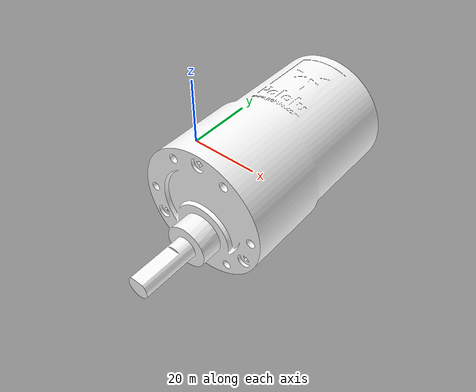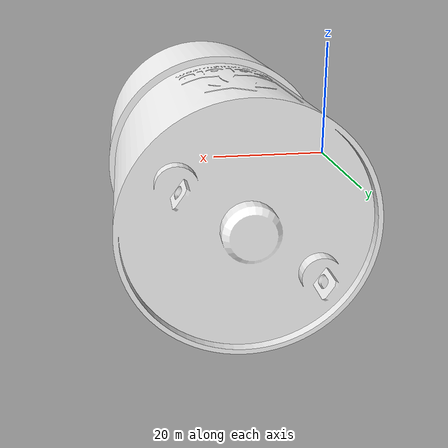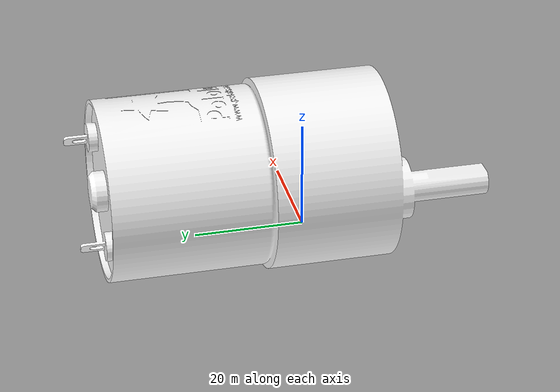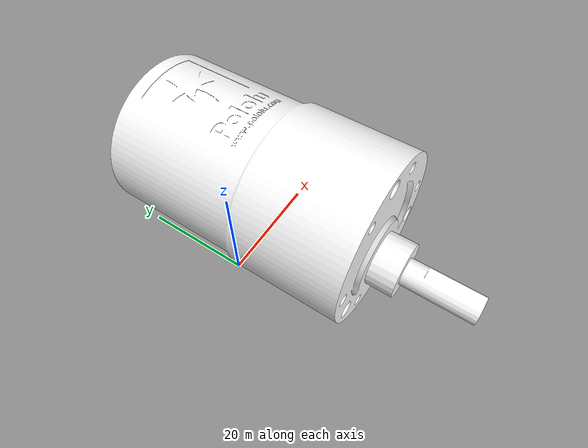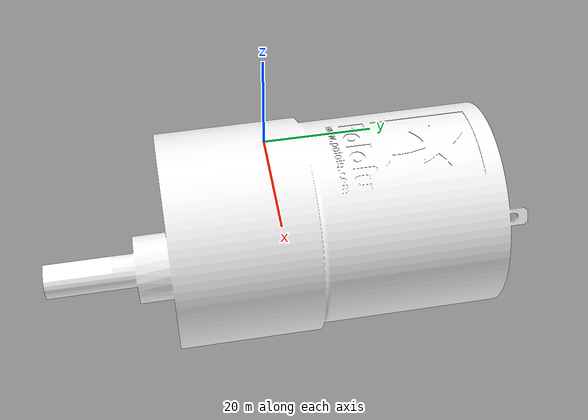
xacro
<robot xmlns:xacro="http://www.ros.org/wiki/xacro" name="assy_part_04">
  <xacro:include filename="$(find o2as_parts_description)/urdf/generated/04_37D-GEARMOTOR-50-70_macro.urdf.xacro"/>
  <xacro:assy_part_04 prefix="" parent="world" spawn_attached="false">
    <origin rpy="0 0 0" xyz="0 0 0"/>
  </xacro:assy_part_04>
</robot>

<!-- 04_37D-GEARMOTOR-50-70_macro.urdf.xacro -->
<robot xmlns:xacro="http://www.ros.org/wiki/xacro" name="assy_part_04">
  <xacro:macro name="assy_part_04" params="prefix parent spawn_attached *origin">
    <link name="${prefix}assy_part_04">
      <visual>
        <origin rpy="1.5707 0 0" xyz="0 0 0"/>
        <geometry>
          <mesh filename="package://o2as_parts_description/meshes/04_37D-GEARMOTOR-50-70.stl" scale="0.001 0.001 0.001"/>
        </geometry>
        <material name="white">
          <color rgba="1 1 1 1"/>
        </material>
      </visual>
      <collision>
        <origin rpy="1.5707 0 0" xyz="0 0 0"/>
        <geometry>
          <mesh filename="package://o2as_parts_description/meshes/04_37D-GEARMOTOR-50-70.stl" scale="0.001 0.001 0.001"/>
        </geometry>
      </collision>
    </link>

    <xacro:if value="${spawn_attached}">
      <joint name="${prefix}assy_part_04_joint" type="fixed">
        <parent link="${parent}"/>
        <child link="${prefix}assy_part_04"/>
        <xacro:insert_block name="origin"/>
      </joint>
    </xacro:if>

  <!-- Extra frames for assembly and motion planning, if any -->
    <joint name="${prefix}assy_part_04_tip_joint" type="fixed">
      <parent link="${prefix}assy_part_04"/>
      <child link="${prefix}assy_part_04_tip"/>
      <origin rpy="${0} ${0} ${-pi/2}" xyz="${0.019} ${-.021 - 0.021} ${-.006}"/>
    </joint>
    <link name="${prefix}assy_part_04_tip"/>

    <joint name="${prefix}assy_part_04_inserted_13_joint" type="fixed">
      <parent link="${prefix}assy_part_04"/>
      <child link="${prefix}assy_part_04_inserted_13"/>
      <origin rpy="${0} ${0} ${-pi/2}" xyz="${0.019} ${-.021 - 0.006} ${-.006}"/>
    </joint>
    <link name="${prefix}assy_part_04_inserted_13"/>

    <joint name="${prefix}assy_part_04_inserted_02_joint" type="fixed">
      <parent link="${prefix}assy_part_04"/>
      <child link="${prefix}assy_part_04_inserted_02"/>
      <origin rpy="${0} ${0} ${-pi/2}" xyz="${0.019} ${-.021 - 0.0} ${-.006}"/>
    </joint>
    <link name="${prefix}assy_part_04_inserted_02"/>

  </xacro:macro>
</robot>
